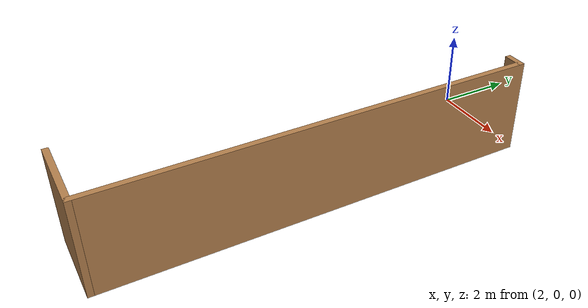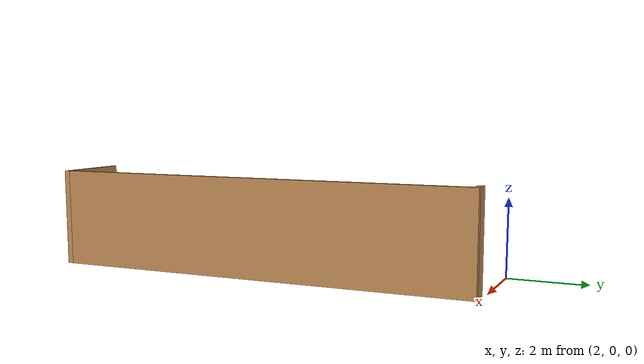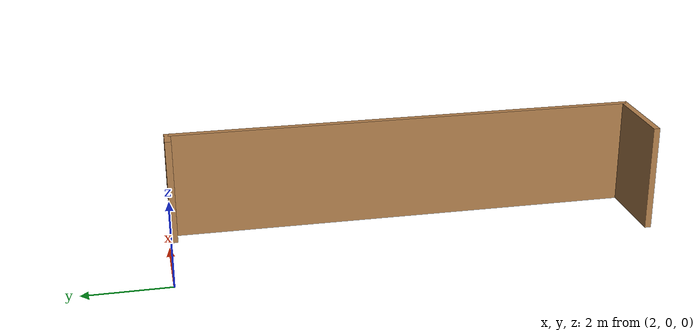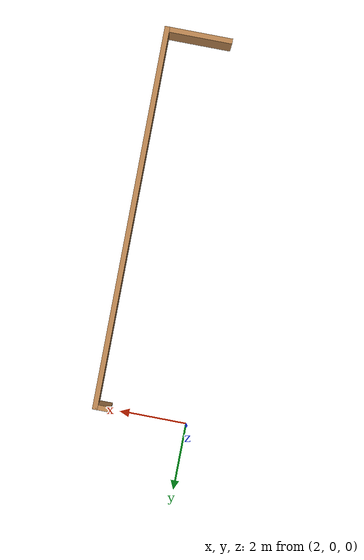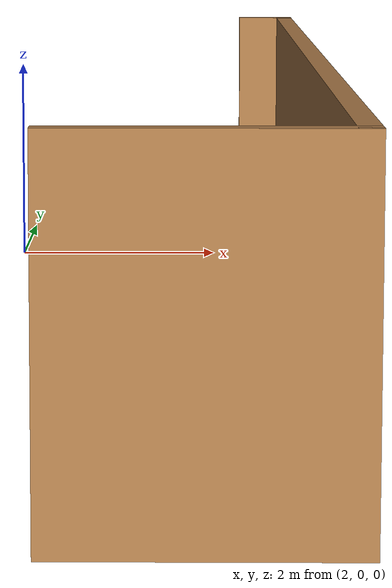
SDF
<?xml version='1.0'?>
<sdf version='1.7'>
  <model name='ground_objects_wall_2'>
    <pose>2.39607 -5.65252 0 0 -0 0</pose>
    <link name='Wall_0'>
      <collision name='Wall_0_Collision'>
        <geometry>
          <box>
            <size>11.25 0.15 2.5</size>
          </box>
        </geometry>
        <pose>0 0 1.25 0 -0 0</pose>
      </collision>
      <visual name='Wall_0_Visual'>
        <pose>0 0 1.25 0 -0 0</pose>
        <geometry>
          <box>
            <size>11.25 0.15 2.5</size>
          </box>
        </geometry>
        <material>
          <script>
            <uri>file://media/materials/scripts/gazebo.material</uri>
            <name>Gazebo/Wood</name>
          </script>
          <ambient>0.756863 0.490196 0.0666667 1</ambient>
        </material>
        <meta>
          <layer>0</layer>
        </meta>
      </visual>
      <pose>2.32107 -0.027518 0 0 -0 -1.5708</pose>
    </link>
    <link name='Wall_4'>
      <collision name='Wall_4_Collision'>
        <geometry>
          <box>
            <size>0.530939 0.15 2.5</size>
          </box>
        </geometry>
        <pose>0 0 1.25 0 -0 0</pose>
      </collision>
      <visual name='Wall_4_Visual'>
        <pose>0 0 1.25 0 -0 0</pose>
        <geometry>
          <box>
            <size>0.530939 0.15 2.5</size>
          </box>
        </geometry>
        <material>
          <script>
            <uri>file://media/materials/scripts/gazebo.material</uri>
            <name>Gazebo/Wood</name>
          </script>
          <ambient>1 1 1 1</ambient>
        </material>
        <meta>
          <layer>0</layer>
        </meta>
      </visual>
      <pose>2.1306 5.52248 0 0 -0 3.14159</pose>
    </link>
    <link name='Wall_6'>
      <collision name='Wall_6_Collision'>
        <geometry>
          <box>
            <size>2 0.15 2.5</size>
          </box>
        </geometry>
        <pose>0 0 1.25 0 -0 0</pose>
      </collision>
      <visual name='Wall_6_Visual'>
        <pose>0 0 1.25 0 -0 0</pose>
        <geometry>
          <box>
            <size>2 0.15 2.5</size>
          </box>
        </geometry>
        <material>
          <script>
            <uri>file://media/materials/scripts/gazebo.material</uri>
            <name>Gazebo/Wood</name>
          </script>
          <ambient>1 1 1 1</ambient>
        </material>
        <meta>
          <layer>0</layer>
        </meta>
      </visual>
      <pose>1.39607 -5.57752 0 0 -0 3.14159</pose>
    </link>
    <static>1</static>
  </model>
</sdf>
